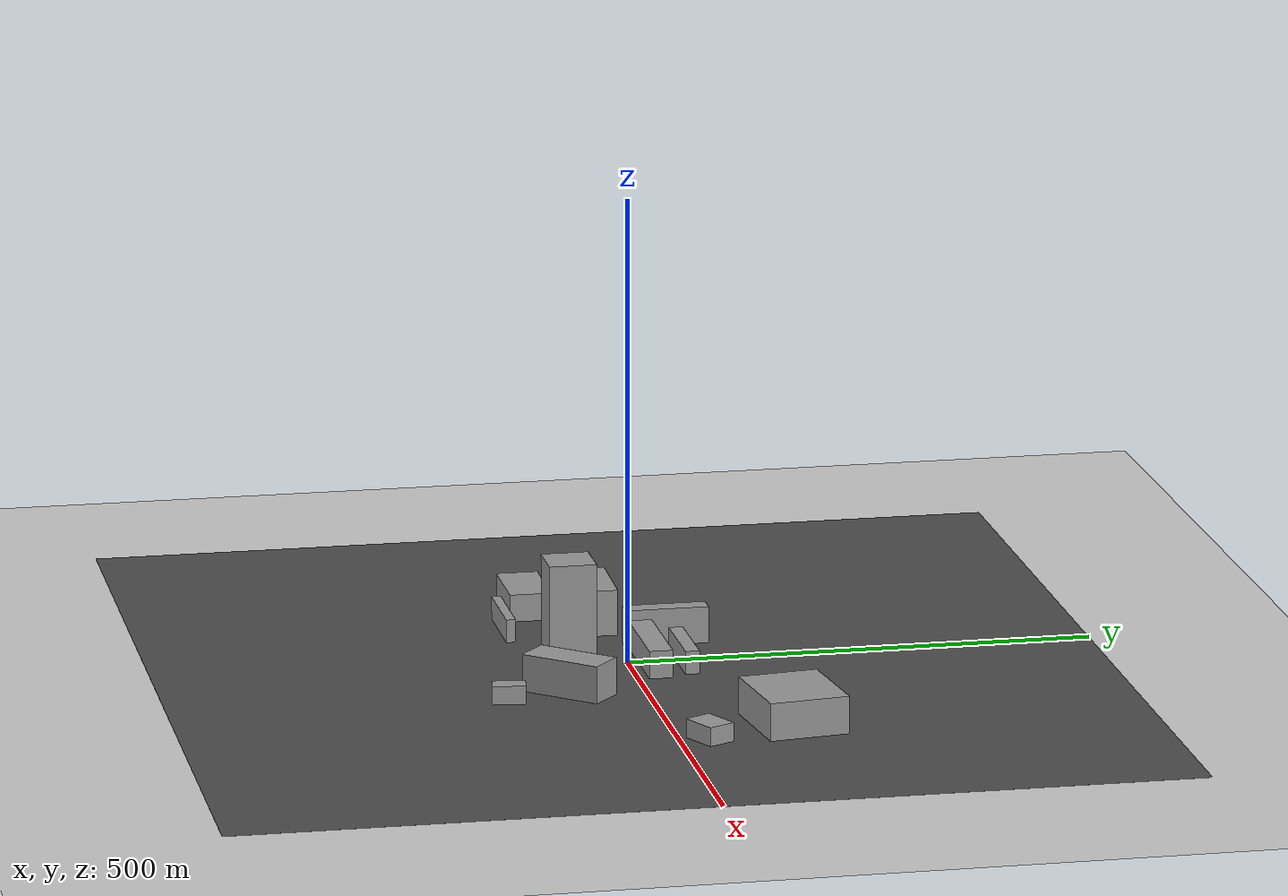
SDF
<sdf version="1.7">
 <world name="default">
  <light name="sun" type="directional">
   <pose>0 0 10 0 -0 0</pose>
   <diffuse>0.8 0.8 0.8 1</diffuse>
   <specular>0.2 0.2 0.2 1</specular>
   <attenuation>
    <range>1000</range>
    <constant>0.9</constant>
    <linear>0.01</linear>
    <quadratic>0.001</quadratic>
   </attenuation>
   <direction>-0.5 0.1 -0.9</direction>
   <spot><inner_angle>0</inner_angle><outer_angle>0</outer_angle><falloff>0</falloff></spot>
  </light>
  <plugin name="wind_plugin" filename="libgazebo_wind_plugin.so">
   <frameId>base_link</frameId>
   <windVelocityMean>0</windVelocityMean>
   <windVelocityMax>20.0</windVelocityMax>
   <windVelocityVariance>0</windVelocityVariance>
   <windDirectionMean>0 1 0</windDirectionMean>
   <windDirectionVariance>0</windDirectionVariance>
   <windGustStart>1</windGustStart>
   <windGustDuration>3600</windGustDuration>
   <windGustVelocityMean>4</windGustVelocityMean>
   <windGustVelocityMax>20.0</windGustVelocityMax>
   <windGustVelocityVariance>1</windGustVelocityVariance>
   <windGustDirectionMean>1 0 0</windGustDirectionMean>
   <windGustDirectionVariance>2</windGustDirectionVariance>
   <windPubTopic>world_wind</windPubTopic>
  </plugin>
  <model name="ground_plane">
   <static>1</static>
   <link name="link">
    <collision name="collision">
     <geometry><plane><normal>0 0 1</normal><size>100 100</size></plane></geometry>
     <surface><friction><ode><mu>100</mu><mu2>50</mu2></ode></friction></surface>
    </collision>
    <visual name="visual">
     <cast_shadows>0</cast_shadows>
     <geometry><plane><normal>0 0 1</normal><size>100 100</size></plane></geometry>
     <material>
      <script><uri>file://media/materials/scripts/gazebo.material</uri><name>Gazebo/Grey</name></script>
     </material>
    </visual>
   </link>
  </model>
  <model name="asphalt_plane">
   <static>1</static>
   <link name="link">
    <collision name="collision"><geometry><box><size>800 800 0.1</size></box></geometry></collision>
    <visual name="visual">
     <cast_shadows>0</cast_shadows>
     <geometry><box><size>1000 1000 0.1</size></box></geometry>
     <material>
      <script>
       <uri>model://asphalt_plane/materials/scripts</uri>
       <uri>model://asphalt_plane/materials/textures</uri>
       <name>vrc/asphalt</name>
      </script>
     </material>
    </visual>
   </link>
  </model>
  <physics name="default_physics" default="0" type="ode">
   <ode>
    <solver>
     <type>quick</type>
     <iters>10</iters>
     <sor>1.3</sor>
     <use_dynamic_moi_rescaling>0</use_dynamic_moi_rescaling>
    </solver>
    <constraints>
     <cfm>0</cfm>
     <erp>0.2</erp>
     <contact_max_correcting_vel>100</contact_max_correcting_vel>
     <contact_surface_layer>0.001</contact_surface_layer>
    </constraints>
   </ode>
   <max_step_size>0.004</max_step_size>
   <real_time_factor>1</real_time_factor>
   <real_time_update_rate>250</real_time_update_rate>
  </physics>
  <gravity>0 0 -9.8066</gravity>
  <magnetic_field>6e-06 2.3e-05 -4.2e-05</magnetic_field>
  <atmosphere type="adiabatic"/>
  <scene><ambient>0.4 0.4 0.4 1</ambient><background>0.7 0.7 0.7 1</background><shadows>1</shadows></scene>
  <spherical_coordinates>
   <surface_model>EARTH_WGS84</surface_model>
   <latitude_deg>0</latitude_deg>
   <longitude_deg>0</longitude_deg>
   <elevation>0</elevation>
   <heading_deg>0</heading_deg>
  </spherical_coordinates>
  <model name="gabriel_building">
   <pose>3.76528 23.9825 0 0 -0 0</pose>
   <link name="Wall_16">
    <collision name="Wall_16_Collision">
     <geometry><box><size>114.85 25 30</size></box></geometry>
     <pose>0 0 15 0 -0 0</pose>
    </collision>
    <visual name="Wall_16_Visual">
     <pose>0 0 15 0 -0 0</pose>
     <geometry><box><size>114.85 25 30</size></box></geometry>
     <material>
      <script><uri>file://media/materials/scripts/gazebo.material</uri><name>Gazebo/Grey</name></script>
      <ambient>1 1 1 1</ambient>
     </material>
     <meta><layer>0</layer></meta>
    </visual>
   </link>
   <static>1</static>
  </model>
  <model name="changjo_building">
   <pose>11.3635 -64.5985 0 0 -0 0</pose>
   <link name="Wall_14">
    <collision name="Wall_14_Collision">
     <geometry><box><size>50.01 50 120</size></box></geometry>
     <pose>0 0 60 0 -0 0</pose>
    </collision>
    <visual name="Wall_14_Visual">
     <pose>0 0 60 0 -0 0</pose>
     <geometry><box><size>50.01 50 120</size></box></geometry>
     <material>
      <script><uri>file://media/materials/scripts/gazebo.material</uri><name>Gazebo/Grey</name></script>
      <ambient>1 1 1 1</ambient>
     </material>
     <meta><layer>0</layer></meta>
    </visual>
   </link>
   <static>1</static>
  </model>
  <model name="tennis_building">
   <pose>279.618 31.3621 0 0 -0 0.463031</pose>
   <link name="Wall_4">
    <collision name="Wall_4_Collision">
     <geometry><box><size>40 30 20</size></box></geometry>
     <pose>0 0 10 0 -0 0</pose>
    </collision>
    <visual name="Wall_4_Visual">
     <pose>0 0 10 0 -0 0</pose>
     <geometry><box><size>40 30 20</size></box></geometry>
     <material>
      <script><uri>file://media/materials/scripts/gazebo.material</uri><name>Gazebo/Grey</name></script>
      <ambient>1 1 1 1</ambient>
     </material>
     <meta><layer>0</layer></meta>
    </visual>
    <pose>-1e-06 -0 0 0 -0 0</pose>
   </link>
   <static>1</static>
  </model>
  <model name="hackey_final">
   <pose>243.494 126.3 0 0 -0 0.12736</pose>
   <link name="Wall_2">
    <collision name="Wall_2_Collision">
     <geometry><box><size>100 85 40</size></box></geometry>
     <pose>0 0 20 0 -0 0</pose>
    </collision>
    <visual name="Wall_2_Visual">
     <pose>0 0 20 0 -0 0</pose>
     <geometry><box><size>100 85 40</size></box></geometry>
     <material>
      <script><uri>file://media/materials/scripts/gazebo.material</uri><name>Gazebo/Grey</name></script>
      <ambient>1 1 1 1</ambient>
     </material>
     <meta><layer>0</layer></meta>
    </visual>
    <pose>1e-06 -0 0 0 -0 0</pose>
   </link>
   <static>1</static>
  </model>
  <model name="upside_gabriel_building">
   <pose>7.25141 59.3054 0 0 -0 0</pose>
   <link name="Wall_19">
    <collision name="Wall_19_Collision">
     <geometry><box><size>90 15 25</size></box></geometry>
     <pose>0 0 12.5 0 -0 0</pose>
    </collision>
    <visual name="Wall_19_Visual">
     <pose>0 0 12.5 0 -0 0</pose>
     <geometry><box><size>90 15 25</size></box></geometry>
     <material>
      <script><uri>file://media/materials/scripts/gazebo.material</uri><name>Gazebo/Grey</name></script>
      <ambient>1 1 1 1</ambient>
     </material>
     <meta><layer>0</layer></meta>
    </visual>
    <pose>1e-06 0 0 0 -0 0</pose>
   </link>
   <static>1</static>
  </model>
  <model name="maria">
   <pose>-157.395 -16.9158 0 0 -0 3.11792</pose>
   <link name="Wall_0">
    <collision name="Wall_0_Collision">
     <geometry><box><size>90 55 50</size></box></geometry>
     <pose>0 0 25 0 -0 0</pose>
    </collision>
    <visual name="Wall_0_Visual">
     <pose>0 0 25 0 -0 0</pose>
     <geometry><box><size>90 55 50</size></box></geometry>
     <material>
      <script><uri>file://media/materials/scripts/gazebo.material</uri><name>Gazebo/Grey</name></script>
      <ambient>1 1 1 1</ambient>
     </material>
     <meta><layer>0</layer></meta>
    </visual>
    <pose>-9.92761 0 0 0 -0 0</pose>
   </link>
   <link name="Wall_3">
    <collision name="Wall_3_Collision">
     <geometry><box><size>20.01 20 40</size></box></geometry>
     <pose>0 0 20 0 -0 0</pose>
    </collision>
    <visual name="Wall_3_Visual">
     <pose>0 0 20 0 -0 0</pose>
     <geometry><box><size>20.01 20 40</size></box></geometry>
     <material>
      <script><uri>file://media/materials/scripts/gazebo.material</uri><name>Gazebo/Grey</name></script>
      <ambient>1 1 1 1</ambient>
     </material>
     <meta><layer>0</layer></meta>
    </visual>
    <pose>44.9226 -17.4937 0 0 -0 0</pose>
   </link>
   <static>1</static>
  </model>
  <model name="baoro_building">
   <pose>-214.59 -72.0495 0 0 -0 0</pose>
   <link name="Wall_27">
    <collision name="Wall_27_Collision">
     <geometry><box><size>85 45 30</size></box></geometry>
     <pose>0 0 15 0 -0 0</pose>
    </collision>
    <visual name="Wall_27_Visual">
     <pose>0 0 15 0 -0 0</pose>
     <geometry><box><size>85 45 30</size></box></geometry>
     <material>
      <script><uri>file://media/materials/scripts/gazebo.material</uri><name>Gazebo/Grey</name></script>
      <ambient>1 1 1 1</ambient>
     </material>
     <meta><layer>0</layer></meta>
    </visual>
    <pose>1e-06 -1e-06 0 0 -0 0</pose>
   </link>
   <static>1</static>
  </model>
  <model name="under_baoro_building">
   <pose>-142.334 -106.955 0 0 -0 0</pose>
   <link name="Wall_29">
    <collision name="Wall_29_Collision">
     <geometry><box><size>90 10 25</size></box></geometry>
     <pose>0 0 12.5 0 -0 0</pose>
    </collision>
    <visual name="Wall_29_Visual">
     <pose>0 0 12.5 0 -0 0</pose>
     <geometry><box><size>90 10 25</size></box></geometry>
     <material>
      <script><uri>file://media/materials/scripts/gazebo.material</uri><name>Gazebo/Grey</name></script>
      <ambient>1 1 1 1</ambient>
     </material>
     <meta><layer>0</layer></meta>
    </visual>
    <pose>2e-06 -0 0 0 -0 0</pose>
   </link>
   <static>1</static>
  </model>
  <model name="historic_building">
   <pose>93.2637 -79.4403 0 0 -0 0.85379</pose>
   <link name="Wall_25">
    <collision name="Wall_25_Collision">
     <geometry><box><size>90 40 40</size></box></geometry>
     <pose>0 0 20 0 -0 0</pose>
    </collision>
    <visual name="Wall_25_Visual">
     <pose>0 0 20 0 -0 0</pose>
     <geometry><box><size>90 40 40</size></box></geometry>
     <material>
      <script><uri>file://media/materials/scripts/gazebo.material</uri><name>Gazebo/Grey</name></script>
      <ambient>1 1 1 1</ambient>
     </material>
     <meta><layer>0</layer></meta>
    </visual>
    <pose>-1e-06 1e-06 0 0 -0 0</pose>
   </link>
   <static>1</static>
  </model>
  <model name="silsep_building">
   <pose>113.523 -146.622 0 0 -0 1.43719</pose>
   <link name="Wall_31">
    <collision name="Wall_31_Collision">
     <geometry><box><size>35 20 20</size></box></geometry>
     <pose>0 0 10 0 -0 0</pose>
    </collision>
    <visual name="Wall_31_Visual">
     <pose>0 0 10 0 -0 0</pose>
     <geometry><box><size>35 20 20</size></box></geometry>
     <material>
      <script><uri>file://media/materials/scripts/gazebo.material</uri><name>Gazebo/Grey</name></script>
      <ambient>1 1 1 1</ambient>
     </material>
     <meta><layer>0</layer></meta>
    </visual>
   </link>
   <static>1</static>
  </model>
  <model name="student_hall">
   <pose>-75.9283 53.7646 0 0 0 -1.57507</pose>
   <link name="Wall_21">
    <collision name="Wall_21_Collision">
     <geometry><box><size>90.01 20 40</size></box></geometry>
     <pose>0 0 20 0 -0 0</pose>
    </collision>
    <visual name="Wall_21_Visual">
     <pose>0 0 20 0 -0 0</pose>
     <geometry><box><size>90.01 20 40</size></box></geometry>
     <material>
      <script><uri>file://media/materials/scripts/gazebo.material</uri><name>Gazebo/Grey</name></script>
      <ambient>1 1 1 1</ambient>
     </material>
     <meta><layer>0</layer></meta>
    </visual>
    <pose>2e-06 9.245 0 0 -0 0</pose>
   </link>
   <link name="Wall_23">
    <collision name="Wall_23_Collision">
     <geometry><box><size>35.01 30 30</size></box></geometry>
     <pose>0 0 15 0 -0 0</pose>
    </collision>
    <visual name="Wall_23_Visual">
     <pose>0 0 15 0 -0 0</pose>
     <geometry><box><size>35.01 30 30</size></box></geometry>
     <material>
      <script><uri>file://media/materials/scripts/gazebo.material</uri><name>Gazebo/Grey</name></script>
      <ambient>1 1 1 1</ambient>
     </material>
     <meta><layer>0</layer></meta>
    </visual>
    <pose>-27.5 -4.245 0 0 -0 0</pose>
   </link>
   <static>1</static>
  </model>
 </world>
</sdf>
